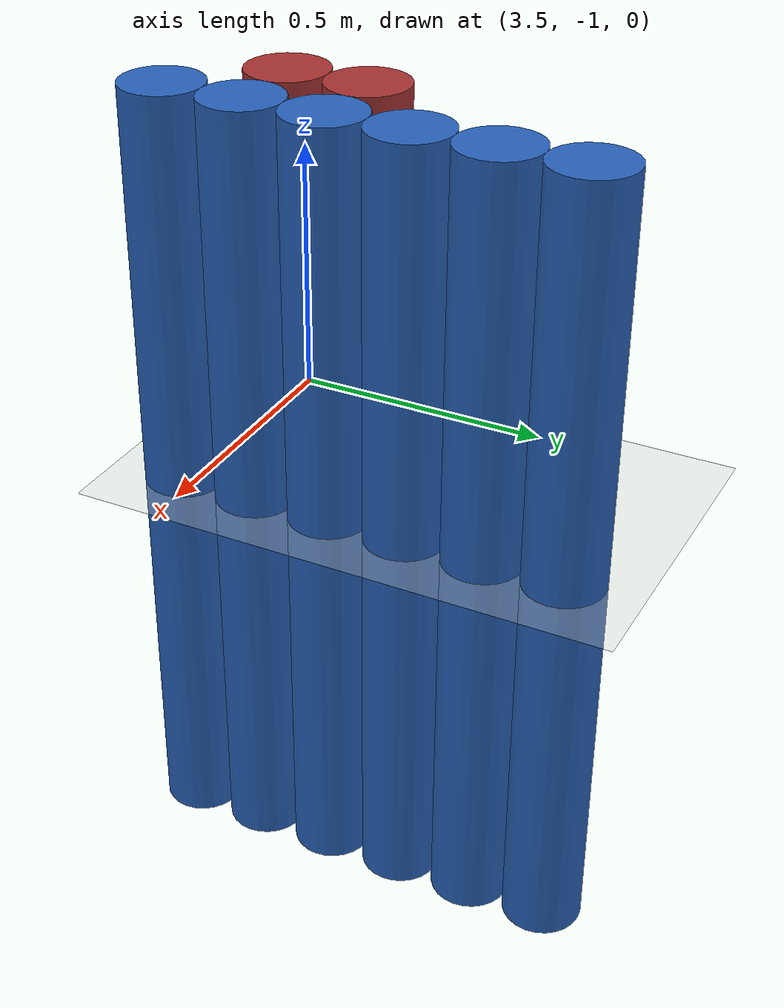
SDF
<sdf version="1.6">
 <world name="default">
  <model name="ground_plane">
   <static>1</static>
   <link name="link">
    <collision name="collision">
     <geometry><plane><normal>0 0 1</normal><size>100 100</size></plane></geometry>
     <surface><friction><ode><mu>100</mu><mu2>50</mu2></ode></friction></surface>
    </collision>
    <visual name="visual">
     <cast_shadows>0</cast_shadows>
     <geometry><plane><normal>0 0 1</normal><size>100 100</size></plane></geometry>
     <material>
      <script><uri>file://media/materials/scripts/gazebo.material</uri><name>Gazebo/Grey</name></script>
     </material>
    </visual>
   </link>
  </model>
  <model name="unit_cylinder_100">
   <static>1</static>
   <pose>3.925000 -1.025000 0.000000 0.000000 0.000000 0.000000</pose>
   <link name="link">
    <inertial>
     <mass>1</mass>
     <inertia><ixx>0.145833</ixx><ixy>0</ixy><ixz>0</ixz><iyy>0.145833</iyy><iyz>0</iyz><izz>0.125</izz></inertia>
    </inertial>
    <collision name="collision">
     <geometry><cylinder><radius>0.075000</radius><length>1.5</length></cylinder></geometry>
    </collision>
    <visual name="visual">
     <geometry><cylinder><radius>0.075000</radius><length>1.5</length></cylinder></geometry>
     <material>
      <ambient>0.152000 0.379000 0.720000 1</ambient>
      <diffuse>0.152000 0.379000 0.720000 1</diffuse>
     </material>
     <material>
      <script><name>Gazebo/Grey</name><uri>file://media/materials/scripts/gazebo.material</uri></script>
     </material>
    </visual>
   </link>
  </model>
  <model name="unit_cylinder_102">
   <static>1</static>
   <pose>3.925000 -0.875000 0.000000 0.000000 0.000000 0.000000</pose>
   <link name="link">
    <inertial>
     <mass>1</mass>
     <inertia><ixx>0.145833</ixx><ixy>0</ixy><ixz>0</ixz><iyy>0.145833</iyy><iyz>0</iyz><izz>0.125</izz></inertia>
    </inertial>
    <collision name="collision">
     <geometry><cylinder><radius>0.075000</radius><length>1.5</length></cylinder></geometry>
    </collision>
    <visual name="visual">
     <geometry><cylinder><radius>0.075000</radius><length>1.5</length></cylinder></geometry>
     <material>
      <ambient>0.152000 0.379000 0.720000 1</ambient>
      <diffuse>0.152000 0.379000 0.720000 1</diffuse>
     </material>
     <material>
      <script><name>Gazebo/Grey</name><uri>file://media/materials/scripts/gazebo.material</uri></script>
     </material>
    </visual>
   </link>
  </model>
  <model name="unit_cylinder_104">
   <static>1</static>
   <pose>3.925000 -0.725000 0.000000 0.000000 0.000000 0.000000</pose>
   <link name="link">
    <inertial>
     <mass>1</mass>
     <inertia><ixx>0.145833</ixx><ixy>0</ixy><ixz>0</ixz><iyy>0.145833</iyy><iyz>0</iyz><izz>0.125</izz></inertia>
    </inertial>
    <collision name="collision">
     <geometry><cylinder><radius>0.075000</radius><length>1.5</length></cylinder></geometry>
    </collision>
    <visual name="visual">
     <geometry><cylinder><radius>0.075000</radius><length>1.5</length></cylinder></geometry>
     <material>
      <ambient>0.152000 0.379000 0.720000 1</ambient>
      <diffuse>0.152000 0.379000 0.720000 1</diffuse>
     </material>
     <material>
      <script><name>Gazebo/Grey</name><uri>file://media/materials/scripts/gazebo.material</uri></script>
     </material>
    </visual>
   </link>
  </model>
  <model name="unit_cylinder_106">
   <static>1</static>
   <pose>3.925000 -0.575000 0.000000 0.000000 0.000000 0.000000</pose>
   <link name="link">
    <inertial>
     <mass>1</mass>
     <inertia><ixx>0.145833</ixx><ixy>0</ixy><ixz>0</ixz><iyy>0.145833</iyy><iyz>0</iyz><izz>0.125</izz></inertia>
    </inertial>
    <collision name="collision">
     <geometry><cylinder><radius>0.075000</radius><length>1.5</length></cylinder></geometry>
    </collision>
    <visual name="visual">
     <geometry><cylinder><radius>0.075000</radius><length>1.5</length></cylinder></geometry>
     <material>
      <ambient>0.152000 0.379000 0.720000 1</ambient>
      <diffuse>0.152000 0.379000 0.720000 1</diffuse>
     </material>
     <material>
      <script><name>Gazebo/Grey</name><uri>file://media/materials/scripts/gazebo.material</uri></script>
     </material>
    </visual>
   </link>
  </model>
  <model name="unit_cylinder_108">
   <static>1</static>
   <pose>3.925000 -0.425000 0.000000 0.000000 0.000000 0.000000</pose>
   <link name="link">
    <inertial>
     <mass>1</mass>
     <inertia><ixx>0.145833</ixx><ixy>0</ixy><ixz>0</ixz><iyy>0.145833</iyy><iyz>0</iyz><izz>0.125</izz></inertia>
    </inertial>
    <collision name="collision">
     <geometry><cylinder><radius>0.075000</radius><length>1.5</length></cylinder></geometry>
    </collision>
    <visual name="visual">
     <geometry><cylinder><radius>0.075000</radius><length>1.5</length></cylinder></geometry>
     <material>
      <ambient>0.152000 0.379000 0.720000 1</ambient>
      <diffuse>0.152000 0.379000 0.720000 1</diffuse>
     </material>
     <material>
      <script><name>Gazebo/Grey</name><uri>file://media/materials/scripts/gazebo.material</uri></script>
     </material>
    </visual>
   </link>
  </model>
  <model name="unit_cylinder_110">
   <static>1</static>
   <pose>3.925000 -0.275000 0.000000 0.000000 0.000000 0.000000</pose>
   <link name="link">
    <inertial>
     <mass>1</mass>
     <inertia><ixx>0.145833</ixx><ixy>0</ixy><ixz>0</ixz><iyy>0.145833</iyy><iyz>0</iyz><izz>0.125</izz></inertia>
    </inertial>
    <collision name="collision">
     <geometry><cylinder><radius>0.075000</radius><length>1.5</length></cylinder></geometry>
    </collision>
    <visual name="visual">
     <geometry><cylinder><radius>0.075000</radius><length>1.5</length></cylinder></geometry>
     <material>
      <ambient>0.152000 0.379000 0.720000 1</ambient>
      <diffuse>0.152000 0.379000 0.720000 1</diffuse>
     </material>
     <material>
      <script><name>Gazebo/Grey</name><uri>file://media/materials/scripts/gazebo.material</uri></script>
     </material>
    </visual>
   </link>
  </model>
  <model name="unit_cylinder_456">
   <static>1</static>
   <pose>3.775000 -0.875000 0.000000 0.000000 0.000000 0.000000</pose>
   <link name="link">
    <inertial>
     <mass>1</mass>
     <inertia><ixx>0.145833</ixx><ixy>0</ixy><ixz>0</ixz><iyy>0.145833</iyy><iyz>0</iyz><izz>0.125</izz></inertia>
    </inertial>
    <collision name="collision">
     <geometry><cylinder><radius>0.075000</radius><length>1.5</length></cylinder></geometry>
    </collision>
    <visual name="visual">
     <geometry><cylinder><radius>0.075000</radius><length>1.5</length></cylinder></geometry>
     <material>
      <ambient>0.648000 0.192000 0.192000 1</ambient>
      <diffuse>0.648000 0.192000 0.192000 1</diffuse>
     </material>
     <material>
      <script><name>Gazebo/Grey</name><uri>file://media/materials/scripts/gazebo.material</uri></script>
     </material>
    </visual>
   </link>
  </model>
  <model name="unit_cylinder_457">
   <static>1</static>
   <pose>3.775000 -0.725000 0.000000 0.000000 0.000000 0.000000</pose>
   <link name="link">
    <inertial>
     <mass>1</mass>
     <inertia><ixx>0.145833</ixx><ixy>0</ixy><ixz>0</ixz><iyy>0.145833</iyy><iyz>0</iyz><izz>0.125</izz></inertia>
    </inertial>
    <collision name="collision">
     <geometry><cylinder><radius>0.075000</radius><length>1.5</length></cylinder></geometry>
    </collision>
    <visual name="visual">
     <geometry><cylinder><radius>0.075000</radius><length>1.5</length></cylinder></geometry>
     <material>
      <ambient>0.648000 0.192000 0.192000 1</ambient>
      <diffuse>0.648000 0.192000 0.192000 1</diffuse>
     </material>
     <material>
      <script><name>Gazebo/Grey</name><uri>file://media/materials/scripts/gazebo.material</uri></script>
     </material>
    </visual>
   </link>
  </model>
  <model name="unit_cylinder_478">
   <static>1</static>
   <pose>3.925000 -1.025000 0.000000 0.000000 0.000000 0.000000</pose>
   <link name="link">
    <inertial>
     <mass>1</mass>
     <inertia><ixx>0.145833</ixx><ixy>0</ixy><ixz>0</ixz><iyy>0.145833</iyy><iyz>0</iyz><izz>0.125</izz></inertia>
    </inertial>
    <collision name="collision">
     <geometry><cylinder><radius>0.075000</radius><length>1.5</length></cylinder></geometry>
    </collision>
    <visual name="visual">
     <geometry><cylinder><radius>0.075000</radius><length>1.5</length></cylinder></geometry>
     <material>
      <ambient>0.152000 0.379000 0.720000 1</ambient>
      <diffuse>0.152000 0.379000 0.720000 1</diffuse>
     </material>
     <material>
      <script><name>Gazebo/Grey</name><uri>file://media/materials/scripts/gazebo.material</uri></script>
     </material>
    </visual>
   </link>
  </model>
  <model name="unit_cylinder_479">
   <static>1</static>
   <pose>3.925000 -0.875000 0.000000 0.000000 0.000000 0.000000</pose>
   <link name="link">
    <inertial>
     <mass>1</mass>
     <inertia><ixx>0.145833</ixx><ixy>0</ixy><ixz>0</ixz><iyy>0.145833</iyy><iyz>0</iyz><izz>0.125</izz></inertia>
    </inertial>
    <collision name="collision">
     <geometry><cylinder><radius>0.075000</radius><length>1.5</length></cylinder></geometry>
    </collision>
    <visual name="visual">
     <geometry><cylinder><radius>0.075000</radius><length>1.5</length></cylinder></geometry>
     <material>
      <ambient>0.152000 0.379000 0.720000 1</ambient>
      <diffuse>0.152000 0.379000 0.720000 1</diffuse>
     </material>
     <material>
      <script><name>Gazebo/Grey</name><uri>file://media/materials/scripts/gazebo.material</uri></script>
     </material>
    </visual>
   </link>
  </model>
  <model name="unit_cylinder_480">
   <static>1</static>
   <pose>3.925000 -0.725000 0.000000 0.000000 0.000000 0.000000</pose>
   <link name="link">
    <inertial>
     <mass>1</mass>
     <inertia><ixx>0.145833</ixx><ixy>0</ixy><ixz>0</ixz><iyy>0.145833</iyy><iyz>0</iyz><izz>0.125</izz></inertia>
    </inertial>
    <collision name="collision">
     <geometry><cylinder><radius>0.075000</radius><length>1.5</length></cylinder></geometry>
    </collision>
    <visual name="visual">
     <geometry><cylinder><radius>0.075000</radius><length>1.5</length></cylinder></geometry>
     <material>
      <ambient>0.152000 0.379000 0.720000 1</ambient>
      <diffuse>0.152000 0.379000 0.720000 1</diffuse>
     </material>
     <material>
      <script><name>Gazebo/Grey</name><uri>file://media/materials/scripts/gazebo.material</uri></script>
     </material>
    </visual>
   </link>
  </model>
  <model name="unit_cylinder_481">
   <static>1</static>
   <pose>3.925000 -0.575000 0.000000 0.000000 0.000000 0.000000</pose>
   <link name="link">
    <inertial>
     <mass>1</mass>
     <inertia><ixx>0.145833</ixx><ixy>0</ixy><ixz>0</ixz><iyy>0.145833</iyy><iyz>0</iyz><izz>0.125</izz></inertia>
    </inertial>
    <collision name="collision">
     <geometry><cylinder><radius>0.075000</radius><length>1.5</length></cylinder></geometry>
    </collision>
    <visual name="visual">
     <geometry><cylinder><radius>0.075000</radius><length>1.5</length></cylinder></geometry>
     <material>
      <ambient>0.152000 0.379000 0.720000 1</ambient>
      <diffuse>0.152000 0.379000 0.720000 1</diffuse>
     </material>
     <material>
      <script><name>Gazebo/Grey</name><uri>file://media/materials/scripts/gazebo.material</uri></script>
     </material>
    </visual>
   </link>
  </model>
  <model name="unit_cylinder_482">
   <static>1</static>
   <pose>3.925000 -0.425000 0.000000 0.000000 0.000000 0.000000</pose>
   <link name="link">
    <inertial>
     <mass>1</mass>
     <inertia><ixx>0.145833</ixx><ixy>0</ixy><ixz>0</ixz><iyy>0.145833</iyy><iyz>0</iyz><izz>0.125</izz></inertia>
    </inertial>
    <collision name="collision">
     <geometry><cylinder><radius>0.075000</radius><length>1.5</length></cylinder></geometry>
    </collision>
    <visual name="visual">
     <geometry><cylinder><radius>0.075000</radius><length>1.5</length></cylinder></geometry>
     <material>
      <ambient>0.152000 0.379000 0.720000 1</ambient>
      <diffuse>0.152000 0.379000 0.720000 1</diffuse>
     </material>
     <material>
      <script><name>Gazebo/Grey</name><uri>file://media/materials/scripts/gazebo.material</uri></script>
     </material>
    </visual>
   </link>
  </model>
 </world>
</sdf>
